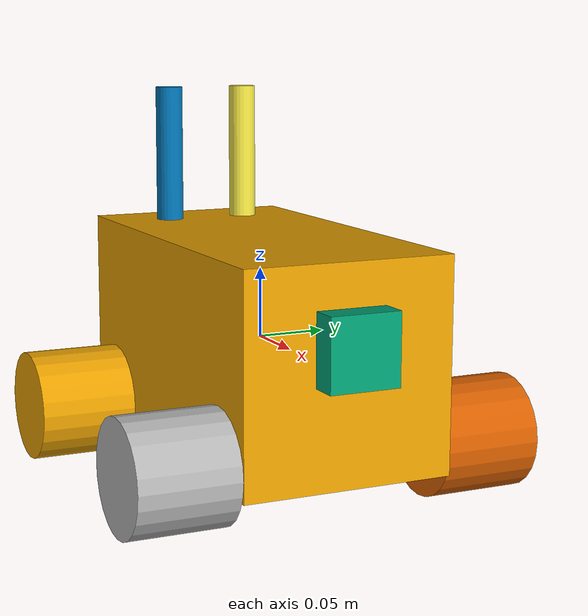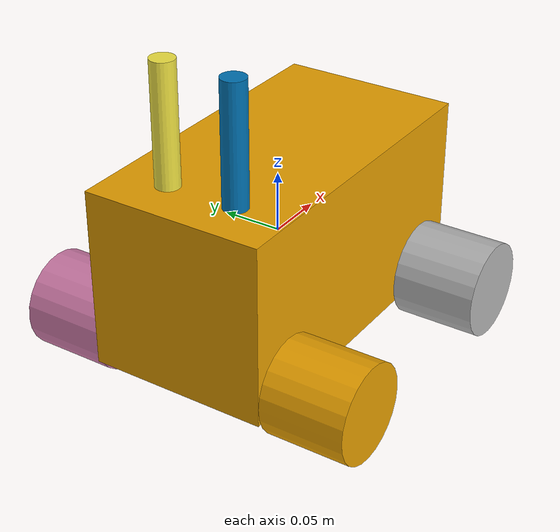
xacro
<?xml version="1.0"?>
<robot xmlns:xacro="http://www.ros.org/wiki/xacro" name="robot">

	<!--déclaration des valeurs constante xacro-->
    <xacro:property name="roue_rayon" value="0.04"/>
    <xacro:property name="roue_long" value="0.07"/>
    <xacro:property name="roue_masse" value="1"/>
	<xacro:property name="chassis_masse" value="5"/>
	<xacro:property name="chassis_longeur" value="0.28"/>
	<xacro:property name="chassis_largeur" value="0.15"/>
	<xacro:property name="chassis_hauteur" value="0.15"/>
	<xacro:property name="antenne_rayon" value="0.01"/>
	<xacro:property name="antenne_longeur" value="0.10"/>

<!-- macro -->
    <!-- calcule de la mtrice d'inertie pour un cylindre-->
    <xacro:macro name="inertie_cylindre" params="masse rayon longeur">
        <inertial>
            <mass value="${masse}"/>
            <inertia ixx="${masse/12*(3*rayon*rayon + longeur*longeur)}" ixy="0.0" ixz="0.0"
            iyx="0.0" iyy="${masse/12*(3*rayon*rayon + longeur*longeur)}" iyz="0.0"
            izx="0.0" izy="0.0" izz="${masse/2*(rayon*rayon)}"/>
        </inertial>
    </xacro:macro>

    <!-- calcule de la matrice d'inertie pour une box-->
    <xacro:macro name="inertie_boite" params="masse l w h">
        <inertial>
            <mass value="${masse}" />
            <inertia ixx="${masse/3*(w*w + h*h)}" ixy="${masse/4*l*w}" ixz="${masse/4*l*h}"
            iyx="0.0" iyy="${masse/3*(l*l + h*h)}" iyz="${masse/4*w*h}"
            izx="0.0" izy="0.0" izz="${masse/3*(l*l + w*w)}"/>
        </inertial>
    </xacro:macro>

<!-- chassis du robot-->
	<link name="base_link">
		<visual>
			<geometry>
				<box size="${chassis_longeur} ${chassis_largeur} ${chassis_hauteur}"/>
			</geometry>
        </visual>
		<collision>
			<geometry>
				<box size="${chassis_longeur} ${chassis_largeur} ${chassis_hauteur}"/>
			</geometry>
		</collision>
	</link>

<!-- inertie du chassis du robot-->
	<link name="base_inertie">
		<xacro:inertie_boite masse="${chassis_masse}" l="${chassis_longeur}" w="${chassis_largeur}" h="${chassis_hauteur}"/>
	</link>
	<!-- liaison cinematique-->
	<joint name="joint_base_inertie" type="fixed">
    	<parent link="base_link"/>
    	<child link="base_inertie"/>
  	</joint>

<!-- support camera -->
	<link name="Support_Cam">
		<visual>
			<origin rpy="0.0 0.0 0.0" xyz="0.01 0.0 0.0"/>
			<geometry>
				<box size="0.02 0.05 0.05"/>
			</geometry>
		</visual>
		<collision>
			<origin rpy="0.0 0.0 0.0" xyz="0.01 0.0 0.0"/>
			<geometry>
				<box size="0.02 0.05 0.05"/>
			</geometry>
		</collision>
	</link>
	<!-- liaison cinematique-->
	<joint name="joint_Support_Cam" type="fixed">
		<origin xyz="0.14 0.0 0.02" rpy="0.0 0.0 0.0"/>
    	<parent link="base_link"/>
    	<child link="Support_Cam"/>
  	</joint>

<!-- Antenne 1 du robot -->
	<link name="antenne1">
		<visual>
			<origin rpy="0.0 0.0 0.0" xyz="0.0 0.0 0.05"/>
			<geometry>
				<cylinder radius="${antenne_rayon}" length="${antenne_longeur}"/>
			</geometry>
		</visual>
		<collision>
			<origin rpy="0.0 0.0 0.0" xyz="0.0 0.0 0.05"/>
			<geometry>
				<cylinder radius="${antenne_rayon}" length="${antenne_longeur}"/>
			</geometry>
		</collision>
	</link>
	<!-- liaison cinematique-->
	<joint name="joint_antenne1" type="fixed">
		<origin rpy="0.0 0.0 0.0" xyz="-0.10 0.03 0.075"/>
    	<parent link="base_link"/>
    	<child link="antenne1"/>
  	</joint>

<!-- Antenne 2 du robot -->
	<link name="antenne2">
		<visual>
			<origin rpy="0.0 0.0 0.0" xyz="0.0 0.0 0.05"/>
			<geometry>
				<cylinder radius="${antenne_rayon}" length="${antenne_longeur}"/>
			</geometry>
		</visual>
		<collision>
			<origin rpy="0.0 0.0 0.0" xyz="0.0 0.0 0.05"/>
			<geometry>
				<cylinder radius="${antenne_rayon}" length="${antenne_longeur}"/>
			</geometry>
		</collision>
	</link>
	<!-- liaison cinematique-->
	<joint name="joint_antenne2" type="fixed">
		<origin rpy="0.0 0.0 0.0" xyz="-0.10 -0.03 0.075"/>
    	<parent link="base_link"/>
    	<child link="antenne2"/>
  	</joint>

<!-- roue avant droite du robot -->
	<link name="Roue_AD">
		<visual>
			<origin rpy="1.57 0.0 0.0" xyz="0.0 0.035 0.0"/>
			<geometry>
			    <cylinder radius="${roue_rayon}" length="${roue_long}"/>
			</geometry>
		</visual>
		<collision>
			<origin rpy="1.57 0.0 0.0" xyz="0.0 0.035 0.0"/>
			<geometry>
				<cylinder radius="${roue_rayon}" length="${roue_long}"/>
			</geometry>
		</collision>
        <!-- appel de la macro d'inertie-->
        <xacro:inertie_cylindre masse="${roue_masse}" longeur="${roue_long}" rayon="${roue_rayon}"/>
	</link>
	<!-- liaison cinematique-->
	<joint name="joint_Roue_AD" type="continuous">
		<origin xyz="0.10 0.075 -0.06" rpy="0.0 0.0 0.0"/>
		<parent link="base_link"/>
		<child link="Roue_AD"/>
		<axis xyz="0.0 1 0.0"/>
	</joint>

<!-- roue arriere droite du robot -->
	<link name="Roue_DD">
		<visual>
			<origin rpy="1.57 0.0 0.0" xyz="0.0 0.035 0.0"/>
			<geometry>
				<cylinder radius="${roue_rayon}" length="${roue_long}"/>
			</geometry>
		</visual>
		<collision>
			<origin rpy="1.57 0.0 0.0" xyz="0.0 0.035 0.0"/>
			<geometry>
				<cylinder radius="${roue_rayon}" length="${roue_long}"/>
			</geometry>
		</collision>
        <!-- appel de la macro d'inertie-->
        <xacro:inertie_cylindre masse="${roue_masse}" longeur="${roue_long}" rayon="${roue_rayon}"/>
	</link>
	<!-- liaison cinematique-->
	<joint name="joint_Roue_DD" type="continuous">
		<origin xyz="-0.10 0.075 -0.06" rpy="0.0 0.0 0.0"/>
		<parent link="base_link"/>
		<child link="Roue_DD"/>
		<axis xyz="0.0 1 0.0"/>
	</joint>

<!-- roue avant gauche du robot -->
	<link name="Roue_AG">
		<visual>
			<origin rpy="1.57 0.0 0.0" xyz="0.0 -0.035 0.0"/>
			<geometry>
				<cylinder radius="${roue_rayon}" length="${roue_long}"/>
			</geometry>
		</visual>
		<collision>
			<origin rpy="1.57 0.0 0.0" xyz="0.0 -0.035 0.0"/>
			<geometry>
				<cylinder radius="${roue_rayon}" length="${roue_long}"/>
			</geometry>
		</collision>
        <!-- appel de la macro d'inertie-->
        <xacro:inertie_cylindre masse="${roue_masse}" longeur="${roue_long}" rayon="${roue_rayon}"/>
	</link>
	<!-- liaison cinematique-->
	<joint name="joint_Roue_AG" type="continuous">
		<origin xyz="0.10 -0.075 -0.06" rpy="0.0 0.0 0.0"/>
		<parent link="base_link"/>
		<child link="Roue_AG"/>
		<axis xyz="0.0 1 0.0"/>
	</joint>

<!-- roue avant gauche du robot -->
	<link name="Roue_DG">
		<visual>
			<origin rpy="1.57 0.0 0.0" xyz="0.0 -0.035 0.0"/>
			<geometry>
				<cylinder radius="${roue_rayon}" length="${roue_long}"/>
			</geometry>
		</visual>
		<collision>
			<origin rpy="1.57 0.0 0.0" xyz="0.0 -0.035 0.0"/>
			<geometry>
				<cylinder radius="${roue_rayon}" length="${roue_long}"/>
			</geometry>
		</collision>
        <!-- appel de la macro d'inertie-->
        <xacro:inertie_cylindre masse="${roue_masse}" longeur="${roue_long}" rayon="${roue_rayon}"/>
	</link>
	<!-- liaison cinematique-->
	<joint name="joint_Roue_DG" type="continuous">
		<origin xyz="-0.10 -0.075 -0.06" rpy="0.0 0.0 0.0"/>
		<parent link="base_link"/>
		<child link="Roue_DG"/>
		<axis xyz="0.0 1 0.0"/>
	</joint>
</robot>
